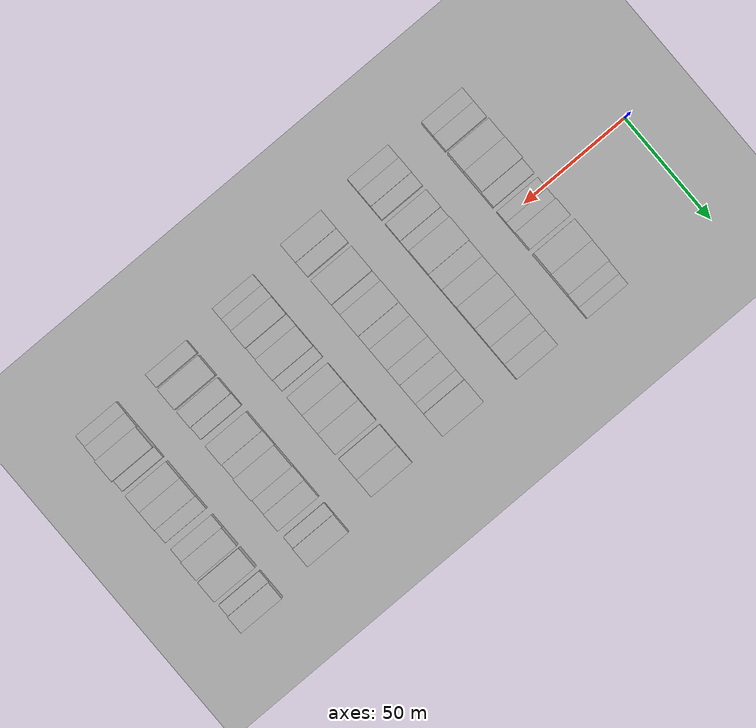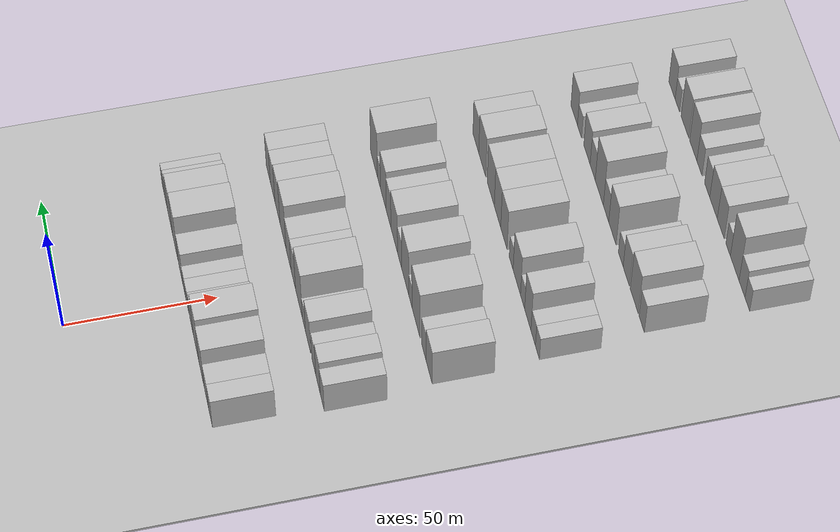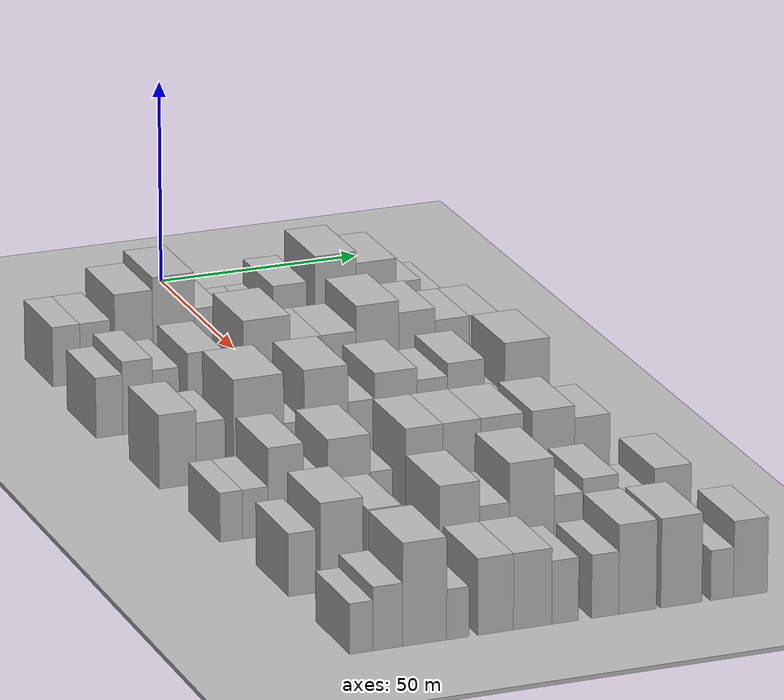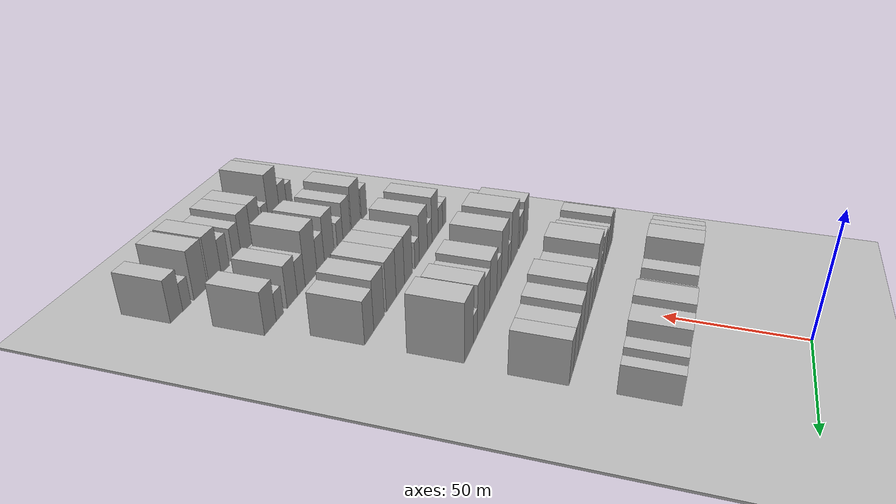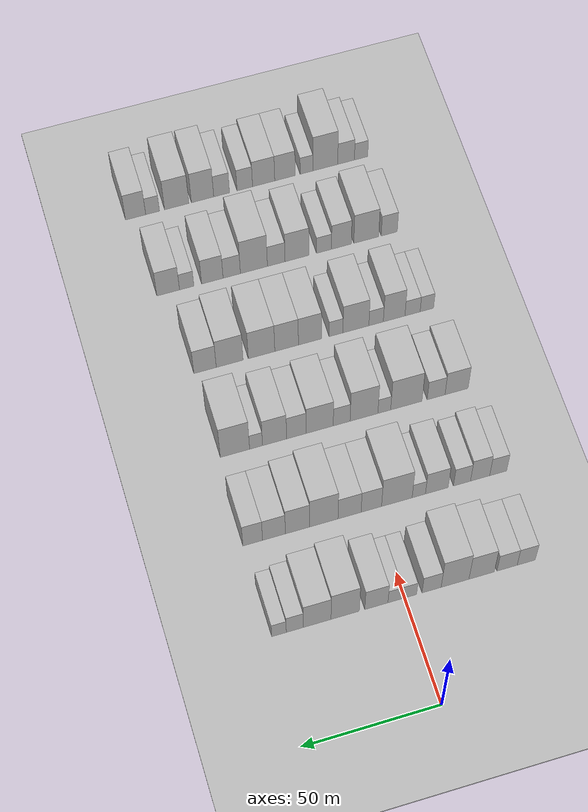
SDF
<sdf version="1.6">
 <world name="default">
  <include><name>ground_plane_1</name><uri>model://HANNAS_ground_plane</uri></include>
  <include>
   <name>ground_plane_2</name>
   <uri>model://HANNAS_ground_plane</uri>
   <pose>100 0 0  0 0 0</pose>
  </include>
  <model name="building_61">
   <static>1</static>
   <pose>50.0000 -44.6472 0 0.000000 0.000000 0.000000</pose>
   <link name="link">
    <pose>0 0 7.50 0 0 0</pose>
    <collision name="collision"><geometry><box><size>20.0000 6.7155 15.0000</size></box></geometry></collision>
    <visual name="visual">
     <cast_shadows>0</cast_shadows>
     <geometry><box><size>20.0000 6.7155 15.0000</size></box></geometry>
     <material>
      <script>
       <uri>model://HANNAS_wall/materials/scripts</uri>
       <uri>model://HANNAS_wall/materials/textures</uri>
       <name>vrc/HANNAS_wall</name>
      </script>
     </material>
    </visual>
   </link>
  </model>
  <model name="building_62">
   <static>1</static>
   <pose>50.0000 -37.5410 0 0.000000 0.000000 0.000000</pose>
   <link name="link">
    <pose>0 0 7.50 0 0 0</pose>
    <collision name="collision"><geometry><box><size>20.0000 7.4971 15.0000</size></box></geometry></collision>
    <visual name="visual">
     <cast_shadows>0</cast_shadows>
     <geometry><box><size>20.0000 7.4971 15.0000</size></box></geometry>
     <material>
      <script>
       <uri>model://HANNAS_wall/materials/scripts</uri>
       <uri>model://HANNAS_wall/materials/textures</uri>
       <name>vrc/HANNAS_wall</name>
      </script>
     </material>
    </visual>
   </link>
  </model>
  <model name="building_63">
   <static>1</static>
   <pose>50.0000 -28.1250 0 0.000000 0.000000 0.000000</pose>
   <link name="link">
    <pose>0 0 10.50 0 0 0</pose>
    <collision name="collision"><geometry><box><size>20.0000 9.3347 21.0000</size></box></geometry></collision>
    <visual name="visual">
     <cast_shadows>0</cast_shadows>
     <geometry><box><size>20.0000 9.3347 21.0000</size></box></geometry>
     <material>
      <script>
       <uri>model://HANNAS_wall/materials/scripts</uri>
       <uri>model://HANNAS_wall/materials/textures</uri>
       <name>vrc/HANNAS_wall</name>
      </script>
     </material>
    </visual>
   </link>
  </model>
  <model name="building_64">
   <static>1</static>
   <pose>50.0000 -18.3331 0 0.000000 0.000000 0.000000</pose>
   <link name="link">
    <pose>0 0 12.00 0 0 0</pose>
    <collision name="collision"><geometry><box><size>20.0000 10.2492 24.0000</size></box></geometry></collision>
    <visual name="visual">
     <cast_shadows>0</cast_shadows>
     <geometry><box><size>20.0000 10.2492 24.0000</size></box></geometry>
     <material>
      <script>
       <uri>model://HANNAS_wall/materials/scripts</uri>
       <uri>model://HANNAS_wall/materials/textures</uri>
       <name>vrc/HANNAS_wall</name>
      </script>
     </material>
    </visual>
   </link>
  </model>
  <model name="building_65">
   <static>1</static>
   <pose>50.0000 -9.7087 0 0.000000 0.000000 0.000000</pose>
   <link name="link">
    <pose>0 0 7.50 0 0 0</pose>
    <collision name="collision"><geometry><box><size>20.0000 6.9996 15.0000</size></box></geometry></collision>
    <visual name="visual">
     <cast_shadows>0</cast_shadows>
     <geometry><box><size>20.0000 6.9996 15.0000</size></box></geometry>
     <material>
      <script>
       <uri>model://HANNAS_wall/materials/scripts</uri>
       <uri>model://HANNAS_wall/materials/textures</uri>
       <name>vrc/HANNAS_wall</name>
      </script>
     </material>
    </visual>
   </link>
  </model>
  <model name="building_66">
   <static>1</static>
   <pose>50.0000 -1.4782 0 0.000000 0.000000 0.000000</pose>
   <link name="link">
    <pose>0 0 6.00 0 0 0</pose>
    <collision name="collision"><geometry><box><size>20.0000 5.4613 12.0000</size></box></geometry></collision>
    <visual name="visual">
     <cast_shadows>0</cast_shadows>
     <geometry><box><size>20.0000 5.4613 12.0000</size></box></geometry>
     <material>
      <script>
       <uri>model://HANNAS_wall/materials/scripts</uri>
       <uri>model://HANNAS_wall/materials/textures</uri>
       <name>vrc/HANNAS_wall</name>
      </script>
     </material>
    </visual>
   </link>
  </model>
  <model name="building_67">
   <static>1</static>
   <pose>50.0000 3.7592 0 0.000000 0.000000 0.000000</pose>
   <link name="link">
    <pose>0 0 6.00 0 0 0</pose>
    <collision name="collision"><geometry><box><size>20.0000 5.0137 12.0000</size></box></geometry></collision>
    <visual name="visual">
     <cast_shadows>0</cast_shadows>
     <geometry><box><size>20.0000 5.0137 12.0000</size></box></geometry>
     <material>
      <script>
       <uri>model://HANNAS_wall/materials/scripts</uri>
       <uri>model://HANNAS_wall/materials/textures</uri>
       <name>vrc/HANNAS_wall</name>
      </script>
     </material>
    </visual>
   </link>
  </model>
  <model name="building_68">
   <static>1</static>
   <pose>50.0000 10.4776 0 0.000000 0.000000 0.000000</pose>
   <link name="link">
    <pose>0 0 9.00 0 0 0</pose>
    <collision name="collision"><geometry><box><size>20.0000 8.4231 18.0000</size></box></geometry></collision>
    <visual name="visual">
     <cast_shadows>0</cast_shadows>
     <geometry><box><size>20.0000 8.4231 18.0000</size></box></geometry>
     <material>
      <script>
       <uri>model://HANNAS_wall/materials/scripts</uri>
       <uri>model://HANNAS_wall/materials/textures</uri>
       <name>vrc/HANNAS_wall</name>
      </script>
     </material>
    </visual>
   </link>
  </model>
  <model name="building_69">
   <static>1</static>
   <pose>50.0000 21.8212 0 0.000000 0.000000 0.000000</pose>
   <link name="link">
    <pose>0 0 12.00 0 0 0</pose>
    <collision name="collision"><geometry><box><size>20.0000 10.2640 24.0000</size></box></geometry></collision>
    <visual name="visual">
     <cast_shadows>0</cast_shadows>
     <geometry><box><size>20.0000 10.2640 24.0000</size></box></geometry>
     <material>
      <script>
       <uri>model://HANNAS_wall/materials/scripts</uri>
       <uri>model://HANNAS_wall/materials/textures</uri>
       <name>vrc/HANNAS_wall</name>
      </script>
     </material>
    </visual>
   </link>
  </model>
  <model name="building_70">
   <static>1</static>
   <pose>50.0000 31.9424 0 0.000000 0.000000 0.000000</pose>
   <link name="link">
    <pose>0 0 10.50 0 0 0</pose>
    <collision name="collision"><geometry><box><size>20.0000 9.9784 21.0000</size></box></geometry></collision>
    <visual name="visual">
     <cast_shadows>0</cast_shadows>
     <geometry><box><size>20.0000 9.9784 21.0000</size></box></geometry>
     <material>
      <script>
       <uri>model://HANNAS_wall/materials/scripts</uri>
       <uri>model://HANNAS_wall/materials/textures</uri>
       <name>vrc/HANNAS_wall</name>
      </script>
     </material>
    </visual>
   </link>
  </model>
  <model name="building_71">
   <static>1</static>
   <pose>50.0000 40.0186 0 0.000000 0.000000 0.000000</pose>
   <link name="link">
    <pose>0 0 7.50 0 0 0</pose>
    <collision name="collision"><geometry><box><size>20.0000 6.1740 15.0000</size></box></geometry></collision>
    <visual name="visual">
     <cast_shadows>0</cast_shadows>
     <geometry><box><size>20.0000 6.1740 15.0000</size></box></geometry>
     <material>
      <script>
       <uri>model://HANNAS_wall/materials/scripts</uri>
       <uri>model://HANNAS_wall/materials/textures</uri>
       <name>vrc/HANNAS_wall</name>
      </script>
     </material>
    </visual>
   </link>
  </model>
  <model name="building_72">
   <static>1</static>
   <pose>50.0000 45.7235 0 0.000000 0.000000 0.000000</pose>
   <link name="link">
    <pose>0 0 6.00 0 0 0</pose>
    <collision name="collision"><geometry><box><size>20.0000 5.2359 12.0000</size></box></geometry></collision>
    <visual name="visual">
     <cast_shadows>0</cast_shadows>
     <geometry><box><size>20.0000 5.2359 12.0000</size></box></geometry>
     <material>
      <script>
       <uri>model://HANNAS_wall/materials/scripts</uri>
       <uri>model://HANNAS_wall/materials/textures</uri>
       <name>vrc/HANNAS_wall</name>
      </script>
     </material>
    </visual>
   </link>
  </model>
  <model name="building_190">
   <static>1</static>
   <pose>85.0000 -46.4459 0 0.000000 0.000000 0.000000</pose>
   <link name="link">
    <pose>0 0 7.50 0 0 0</pose>
    <collision name="collision"><geometry><box><size>20.0000 6.4234 15.0000</size></box></geometry></collision>
    <visual name="visual">
     <cast_shadows>0</cast_shadows>
     <geometry><box><size>20.0000 6.4234 15.0000</size></box></geometry>
     <material>
      <script>
       <uri>model://HANNAS_wall/materials/scripts</uri>
       <uri>model://HANNAS_wall/materials/textures</uri>
       <name>vrc/HANNAS_wall</name>
      </script>
     </material>
    </visual>
   </link>
  </model>
  <model name="building_191">
   <static>1</static>
   <pose>85.0000 -39.6220 0 0.000000 0.000000 0.000000</pose>
   <link name="link">
    <pose>0 0 9.00 0 0 0</pose>
    <collision name="collision"><geometry><box><size>20.0000 7.2243 18.0000</size></box></geometry></collision>
    <visual name="visual">
     <cast_shadows>0</cast_shadows>
     <geometry><box><size>20.0000 7.2243 18.0000</size></box></geometry>
     <material>
      <script>
       <uri>model://HANNAS_wall/materials/scripts</uri>
       <uri>model://HANNAS_wall/materials/textures</uri>
       <name>vrc/HANNAS_wall</name>
      </script>
     </material>
    </visual>
   </link>
  </model>
  <model name="building_192">
   <static>1</static>
   <pose>85.0000 -32.7934 0 0.000000 0.000000 0.000000</pose>
   <link name="link">
    <pose>0 0 7.50 0 0 0</pose>
    <collision name="collision"><geometry><box><size>20.0000 6.4330 15.0000</size></box></geometry></collision>
    <visual name="visual">
     <cast_shadows>0</cast_shadows>
     <geometry><box><size>20.0000 6.4330 15.0000</size></box></geometry>
     <material>
      <script>
       <uri>model://HANNAS_wall/materials/scripts</uri>
       <uri>model://HANNAS_wall/materials/textures</uri>
       <name>vrc/HANNAS_wall</name>
      </script>
     </material>
    </visual>
   </link>
  </model>
  <model name="building_193">
   <static>1</static>
   <pose>85.0000 -23.3150 0 0.000000 0.000000 0.000000</pose>
   <link name="link">
    <pose>0 0 9.00 0 0 0</pose>
    <collision name="collision"><geometry><box><size>20.0000 8.5238 18.0000</size></box></geometry></collision>
    <visual name="visual">
     <cast_shadows>0</cast_shadows>
     <geometry><box><size>20.0000 8.5238 18.0000</size></box></geometry>
     <material>
      <script>
       <uri>model://HANNAS_wall/materials/scripts</uri>
       <uri>model://HANNAS_wall/materials/textures</uri>
       <name>vrc/HANNAS_wall</name>
      </script>
     </material>
    </visual>
   </link>
  </model>
  <model name="building_194">
   <static>1</static>
   <pose>85.0000 -16.5609 0 0.000000 0.000000 0.000000</pose>
   <link name="link">
    <pose>0 0 6.00 0 0 0</pose>
    <collision name="collision"><geometry><box><size>20.0000 4.9844 12.0000</size></box></geometry></collision>
    <visual name="visual">
     <cast_shadows>0</cast_shadows>
     <geometry><box><size>20.0000 4.9844 12.0000</size></box></geometry>
     <material>
      <script>
       <uri>model://HANNAS_wall/materials/scripts</uri>
       <uri>model://HANNAS_wall/materials/textures</uri>
       <name>vrc/HANNAS_wall</name>
      </script>
     </material>
    </visual>
   </link>
  </model>
  <model name="building_195">
   <static>1</static>
   <pose>85.0000 -8.3574 0 0.000000 0.000000 0.000000</pose>
   <link name="link">
    <pose>0 0 12.00 0 0 0</pose>
    <collision name="collision"><geometry><box><size>20.0000 11.4226 24.0000</size></box></geometry></collision>
    <visual name="visual">
     <cast_shadows>0</cast_shadows>
     <geometry><box><size>20.0000 11.4226 24.0000</size></box></geometry>
     <material>
      <script>
       <uri>model://HANNAS_wall/materials/scripts</uri>
       <uri>model://HANNAS_wall/materials/textures</uri>
       <name>vrc/HANNAS_wall</name>
      </script>
     </material>
    </visual>
   </link>
  </model>
  <model name="building_196">
   <static>1</static>
   <pose>85.0000 1.1625 0 0.000000 0.000000 0.000000</pose>
   <link name="link">
    <pose>0 0 9.00 0 0 0</pose>
    <collision name="collision"><geometry><box><size>20.0000 7.6171 18.0000</size></box></geometry></collision>
    <visual name="visual">
     <cast_shadows>0</cast_shadows>
     <geometry><box><size>20.0000 7.6171 18.0000</size></box></geometry>
     <material>
      <script>
       <uri>model://HANNAS_wall/materials/scripts</uri>
       <uri>model://HANNAS_wall/materials/textures</uri>
       <name>vrc/HANNAS_wall</name>
      </script>
     </material>
    </visual>
   </link>
  </model>
  <model name="building_197">
   <static>1</static>
   <pose>85.0000 9.2488 0 0.000000 0.000000 0.000000</pose>
   <link name="link">
    <pose>0 0 9.00 0 0 0</pose>
    <collision name="collision"><geometry><box><size>20.0000 8.5557 18.0000</size></box></geometry></collision>
    <visual name="visual">
     <cast_shadows>0</cast_shadows>
     <geometry><box><size>20.0000 8.5557 18.0000</size></box></geometry>
     <material>
      <script>
       <uri>model://HANNAS_wall/materials/scripts</uri>
       <uri>model://HANNAS_wall/materials/textures</uri>
       <name>vrc/HANNAS_wall</name>
      </script>
     </material>
    </visual>
   </link>
  </model>
  <model name="building_198">
   <static>1</static>
   <pose>85.0000 18.7583 0 0.000000 0.000000 0.000000</pose>
   <link name="link">
    <pose>0 0 12.00 0 0 0</pose>
    <collision name="collision"><geometry><box><size>20.0000 10.4633 24.0000</size></box></geometry></collision>
    <visual name="visual">
     <cast_shadows>0</cast_shadows>
     <geometry><box><size>20.0000 10.4633 24.0000</size></box></geometry>
     <material>
      <script>
       <uri>model://HANNAS_wall/materials/scripts</uri>
       <uri>model://HANNAS_wall/materials/textures</uri>
       <name>vrc/HANNAS_wall</name>
      </script>
     </material>
    </visual>
   </link>
  </model>
  <model name="building_199">
   <static>1</static>
   <pose>85.0000 28.4681 0 0.000000 0.000000 0.000000</pose>
   <link name="link">
    <pose>0 0 10.50 0 0 0</pose>
    <collision name="collision"><geometry><box><size>20.0000 8.9564 21.0000</size></box></geometry></collision>
    <visual name="visual">
     <cast_shadows>0</cast_shadows>
     <geometry><box><size>20.0000 8.9564 21.0000</size></box></geometry>
     <material>
      <script>
       <uri>model://HANNAS_wall/materials/scripts</uri>
       <uri>model://HANNAS_wall/materials/textures</uri>
       <name>vrc/HANNAS_wall</name>
      </script>
     </material>
    </visual>
   </link>
  </model>
  <model name="building_200">
   <static>1</static>
   <pose>85.0000 37.1451 0 0.000000 0.000000 0.000000</pose>
   <link name="link">
    <pose>0 0 9.00 0 0 0</pose>
    <collision name="collision"><geometry><box><size>20.0000 8.3976 18.0000</size></box></geometry></collision>
    <visual name="visual">
     <cast_shadows>0</cast_shadows>
     <geometry><box><size>20.0000 8.3976 18.0000</size></box></geometry>
     <material>
      <script>
       <uri>model://HANNAS_wall/materials/scripts</uri>
       <uri>model://HANNAS_wall/materials/textures</uri>
       <name>vrc/HANNAS_wall</name>
      </script>
     </material>
    </visual>
   </link>
  </model>
  <model name="building_201">
   <static>1</static>
   <pose>85.0000 44.9519 0 0.000000 0.000000 0.000000</pose>
   <link name="link">
    <pose>0 0 9.00 0 0 0</pose>
    <collision name="collision"><geometry><box><size>20.0000 7.2159 18.0000</size></box></geometry></collision>
    <visual name="visual">
     <cast_shadows>0</cast_shadows>
     <geometry><box><size>20.0000 7.2159 18.0000</size></box></geometry>
     <material>
      <script>
       <uri>model://HANNAS_wall/materials/scripts</uri>
       <uri>model://HANNAS_wall/materials/textures</uri>
       <name>vrc/HANNAS_wall</name>
      </script>
     </material>
    </visual>
   </link>
  </model>
  <model name="building_313">
   <static>1</static>
   <pose>120.0000 -42.5972 0 0.000000 0.000000 0.000000</pose>
   <link name="link">
    <pose>0 0 9.00 0 0 0</pose>
    <collision name="collision"><geometry><box><size>20.0000 8.8625 18.0000</size></box></geometry></collision>
    <visual name="visual">
     <cast_shadows>0</cast_shadows>
     <geometry><box><size>20.0000 8.8625 18.0000</size></box></geometry>
     <material>
      <script>
       <uri>model://HANNAS_wall/materials/scripts</uri>
       <uri>model://HANNAS_wall/materials/textures</uri>
       <name>vrc/HANNAS_wall</name>
      </script>
     </material>
    </visual>
   </link>
  </model>
  <model name="building_314">
   <static>1</static>
   <pose>120.0000 -34.7404 0 0.000000 0.000000 0.000000</pose>
   <link name="link">
    <pose>0 0 7.50 0 0 0</pose>
    <collision name="collision"><geometry><box><size>20.0000 6.8511 15.0000</size></box></geometry></collision>
    <visual name="visual">
     <cast_shadows>0</cast_shadows>
     <geometry><box><size>20.0000 6.8511 15.0000</size></box></geometry>
     <material>
      <script>
       <uri>model://HANNAS_wall/materials/scripts</uri>
       <uri>model://HANNAS_wall/materials/textures</uri>
       <name>vrc/HANNAS_wall</name>
      </script>
     </material>
    </visual>
   </link>
  </model>
  <model name="building_315">
   <static>1</static>
   <pose>120.0000 -23.3367 0 0.000000 0.000000 0.000000</pose>
   <link name="link">
    <pose>0 0 12.00 0 0 0</pose>
    <collision name="collision"><geometry><box><size>20.0000 11.9563 24.0000</size></box></geometry></collision>
    <visual name="visual">
     <cast_shadows>0</cast_shadows>
     <geometry><box><size>20.0000 11.9563 24.0000</size></box></geometry>
     <material>
      <script>
       <uri>model://HANNAS_wall/materials/scripts</uri>
       <uri>model://HANNAS_wall/materials/textures</uri>
       <name>vrc/HANNAS_wall</name>
      </script>
     </material>
    </visual>
   </link>
  </model>
  <model name="building_316">
   <static>1</static>
   <pose>120.0000 -14.9252 0 0.000000 0.000000 0.000000</pose>
   <link name="link">
    <pose>0 0 6.00 0 0 0</pose>
    <collision name="collision"><geometry><box><size>20.0000 4.8667 12.0000</size></box></geometry></collision>
    <visual name="visual">
     <cast_shadows>0</cast_shadows>
     <geometry><box><size>20.0000 4.8667 12.0000</size></box></geometry>
     <material>
      <script>
       <uri>model://HANNAS_wall/materials/scripts</uri>
       <uri>model://HANNAS_wall/materials/textures</uri>
       <name>vrc/HANNAS_wall</name>
      </script>
     </material>
    </visual>
   </link>
  </model>
  <model name="building_317">
   <static>1</static>
   <pose>120.0000 -7.2116 0 0.000000 0.000000 0.000000</pose>
   <link name="link">
    <pose>0 0 12.00 0 0 0</pose>
    <collision name="collision"><geometry><box><size>20.0000 10.5604 24.0000</size></box></geometry></collision>
    <visual name="visual">
     <cast_shadows>0</cast_shadows>
     <geometry><box><size>20.0000 10.5604 24.0000</size></box></geometry>
     <material>
      <script>
       <uri>model://HANNAS_wall/materials/scripts</uri>
       <uri>model://HANNAS_wall/materials/textures</uri>
       <name>vrc/HANNAS_wall</name>
      </script>
     </material>
    </visual>
   </link>
  </model>
  <model name="building_318">
   <static>1</static>
   <pose>120.0000 1.2602 0 0.000000 0.000000 0.000000</pose>
   <link name="link">
    <pose>0 0 7.50 0 0 0</pose>
    <collision name="collision"><geometry><box><size>20.0000 6.3833 15.0000</size></box></geometry></collision>
    <visual name="visual">
     <cast_shadows>0</cast_shadows>
     <geometry><box><size>20.0000 6.3833 15.0000</size></box></geometry>
     <material>
      <script>
       <uri>model://HANNAS_wall/materials/scripts</uri>
       <uri>model://HANNAS_wall/materials/textures</uri>
       <name>vrc/HANNAS_wall</name>
      </script>
     </material>
    </visual>
   </link>
  </model>
  <model name="building_319">
   <static>1</static>
   <pose>120.0000 9.5527 0 0.000000 0.000000 0.000000</pose>
   <link name="link">
    <pose>0 0 10.50 0 0 0</pose>
    <collision name="collision"><geometry><box><size>20.0000 10.2016 21.0000</size></box></geometry></collision>
    <visual name="visual">
     <cast_shadows>0</cast_shadows>
     <geometry><box><size>20.0000 10.2016 21.0000</size></box></geometry>
     <material>
      <script>
       <uri>model://HANNAS_wall/materials/scripts</uri>
       <uri>model://HANNAS_wall/materials/textures</uri>
       <name>vrc/HANNAS_wall</name>
      </script>
     </material>
    </visual>
   </link>
  </model>
  <model name="building_320">
   <static>1</static>
   <pose>120.0000 18.3383 0 0.000000 0.000000 0.000000</pose>
   <link name="link">
    <pose>0 0 9.00 0 0 0</pose>
    <collision name="collision"><geometry><box><size>20.0000 7.3697 18.0000</size></box></geometry></collision>
    <visual name="visual">
     <cast_shadows>0</cast_shadows>
     <geometry><box><size>20.0000 7.3697 18.0000</size></box></geometry>
     <material>
      <script>
       <uri>model://HANNAS_wall/materials/scripts</uri>
       <uri>model://HANNAS_wall/materials/textures</uri>
       <name>vrc/HANNAS_wall</name>
      </script>
     </material>
    </visual>
   </link>
  </model>
  <model name="building_321">
   <static>1</static>
   <pose>120.0000 26.5480 0 0.000000 0.000000 0.000000</pose>
   <link name="link">
    <pose>0 0 10.50 0 0 0</pose>
    <collision name="collision"><geometry><box><size>20.0000 9.0497 21.0000</size></box></geometry></collision>
    <visual name="visual">
     <cast_shadows>0</cast_shadows>
     <geometry><box><size>20.0000 9.0497 21.0000</size></box></geometry>
     <material>
      <script>
       <uri>model://HANNAS_wall/materials/scripts</uri>
       <uri>model://HANNAS_wall/materials/textures</uri>
       <name>vrc/HANNAS_wall</name>
      </script>
     </material>
    </visual>
   </link>
  </model>
  <model name="building_322">
   <static>1</static>
   <pose>120.0000 33.5007 0 0.000000 0.000000 0.000000</pose>
   <link name="link">
    <pose>0 0 6.00 0 0 0</pose>
    <collision name="collision"><geometry><box><size>20.0000 4.8557 12.0000</size></box></geometry></collision>
    <visual name="visual">
     <cast_shadows>0</cast_shadows>
     <geometry><box><size>20.0000 4.8557 12.0000</size></box></geometry>
     <material>
      <script>
       <uri>model://HANNAS_wall/materials/scripts</uri>
       <uri>model://HANNAS_wall/materials/textures</uri>
       <name>vrc/HANNAS_wall</name>
      </script>
     </material>
    </visual>
   </link>
  </model>
  <model name="building_323">
   <static>1</static>
   <pose>120.0000 41.4045 0 0.000000 0.000000 0.000000</pose>
   <link name="link">
    <pose>0 0 12.00 0 0 0</pose>
    <collision name="collision"><geometry><box><size>20.0000 10.9520 24.0000</size></box></geometry></collision>
    <visual name="visual">
     <cast_shadows>0</cast_shadows>
     <geometry><box><size>20.0000 10.9520 24.0000</size></box></geometry>
     <material>
      <script>
       <uri>model://HANNAS_wall/materials/scripts</uri>
       <uri>model://HANNAS_wall/materials/textures</uri>
       <name>vrc/HANNAS_wall</name>
      </script>
     </material>
    </visual>
   </link>
  </model>
  <model name="building_435">
   <static>1</static>
   <pose>155.0000 -42.7965 0 0.000000 0.000000 0.000000</pose>
   <link name="link">
    <pose>0 0 6.00 0 0 0</pose>
    <collision name="collision"><geometry><box><size>20.0000 5.2604 12.0000</size></box></geometry></collision>
    <visual name="visual">
     <cast_shadows>0</cast_shadows>
     <geometry><box><size>20.0000 5.2604 12.0000</size></box></geometry>
     <material>
      <script>
       <uri>model://HANNAS_wall/materials/scripts</uri>
       <uri>model://HANNAS_wall/materials/textures</uri>
       <name>vrc/HANNAS_wall</name>
      </script>
     </material>
    </visual>
   </link>
  </model>
  <model name="building_436">
   <static>1</static>
   <pose>155.0000 -37.1959 0 0.000000 0.000000 0.000000</pose>
   <link name="link">
    <pose>0 0 6.00 0 0 0</pose>
    <collision name="collision"><geometry><box><size>20.0000 5.9408 12.0000</size></box></geometry></collision>
    <visual name="visual">
     <cast_shadows>0</cast_shadows>
     <geometry><box><size>20.0000 5.9408 12.0000</size></box></geometry>
     <material>
      <script>
       <uri>model://HANNAS_wall/materials/scripts</uri>
       <uri>model://HANNAS_wall/materials/textures</uri>
       <name>vrc/HANNAS_wall</name>
      </script>
     </material>
    </visual>
   </link>
  </model>
  <model name="building_437">
   <static>1</static>
   <pose>155.0000 -30.0200 0 0.000000 0.000000 0.000000</pose>
   <link name="link">
    <pose>0 0 10.50 0 0 0</pose>
    <collision name="collision"><geometry><box><size>20.0000 8.4110 21.0000</size></box></geometry></collision>
    <visual name="visual">
     <cast_shadows>0</cast_shadows>
     <geometry><box><size>20.0000 8.4110 21.0000</size></box></geometry>
     <material>
      <script>
       <uri>model://HANNAS_wall/materials/scripts</uri>
       <uri>model://HANNAS_wall/materials/textures</uri>
       <name>vrc/HANNAS_wall</name>
      </script>
     </material>
    </visual>
   </link>
  </model>
  <model name="building_438">
   <static>1</static>
   <pose>155.0000 -23.0058 0 0.000000 0.000000 0.000000</pose>
   <link name="link">
    <pose>0 0 6.00 0 0 0</pose>
    <collision name="collision"><geometry><box><size>20.0000 5.6173 12.0000</size></box></geometry></collision>
    <visual name="visual">
     <cast_shadows>0</cast_shadows>
     <geometry><box><size>20.0000 5.6173 12.0000</size></box></geometry>
     <material>
      <script>
       <uri>model://HANNAS_wall/materials/scripts</uri>
       <uri>model://HANNAS_wall/materials/textures</uri>
       <name>vrc/HANNAS_wall</name>
      </script>
     </material>
    </visual>
   </link>
  </model>
  <model name="building_439">
   <static>1</static>
   <pose>155.0000 -15.1547 0 0.000000 0.000000 0.000000</pose>
   <link name="link">
    <pose>0 0 10.50 0 0 0</pose>
    <collision name="collision"><geometry><box><size>20.0000 10.0847 21.0000</size></box></geometry></collision>
    <visual name="visual">
     <cast_shadows>0</cast_shadows>
     <geometry><box><size>20.0000 10.0847 21.0000</size></box></geometry>
     <material>
      <script>
       <uri>model://HANNAS_wall/materials/scripts</uri>
       <uri>model://HANNAS_wall/materials/textures</uri>
       <name>vrc/HANNAS_wall</name>
      </script>
     </material>
    </visual>
   </link>
  </model>
  <model name="building_440">
   <static>1</static>
   <pose>155.0000 -7.4631 0 0.000000 0.000000 0.000000</pose>
   <link name="link">
    <pose>0 0 6.00 0 0 0</pose>
    <collision name="collision"><geometry><box><size>20.0000 5.2986 12.0000</size></box></geometry></collision>
    <visual name="visual">
     <cast_shadows>0</cast_shadows>
     <geometry><box><size>20.0000 5.2986 12.0000</size></box></geometry>
     <material>
      <script>
       <uri>model://HANNAS_wall/materials/scripts</uri>
       <uri>model://HANNAS_wall/materials/textures</uri>
       <name>vrc/HANNAS_wall</name>
      </script>
     </material>
    </visual>
   </link>
  </model>
  <model name="building_441">
   <static>1</static>
   <pose>155.0000 2.6052 0 0.000000 0.000000 0.000000</pose>
   <link name="link">
    <pose>0 0 10.50 0 0 0</pose>
    <collision name="collision"><geometry><box><size>20.0000 8.8379 21.0000</size></box></geometry></collision>
    <visual name="visual">
     <cast_shadows>0</cast_shadows>
     <geometry><box><size>20.0000 8.8379 21.0000</size></box></geometry>
     <material>
      <script>
       <uri>model://HANNAS_wall/materials/scripts</uri>
       <uri>model://HANNAS_wall/materials/textures</uri>
       <name>vrc/HANNAS_wall</name>
      </script>
     </material>
    </visual>
   </link>
  </model>
  <model name="building_442">
   <static>1</static>
   <pose>155.0000 11.5590 0 0.000000 0.000000 0.000000</pose>
   <link name="link">
    <pose>0 0 10.50 0 0 0</pose>
    <collision name="collision"><geometry><box><size>20.0000 9.0697 21.0000</size></box></geometry></collision>
    <visual name="visual">
     <cast_shadows>0</cast_shadows>
     <geometry><box><size>20.0000 9.0697 21.0000</size></box></geometry>
     <material>
      <script>
       <uri>model://HANNAS_wall/materials/scripts</uri>
       <uri>model://HANNAS_wall/materials/textures</uri>
       <name>vrc/HANNAS_wall</name>
      </script>
     </material>
    </visual>
   </link>
  </model>
  <model name="building_443">
   <static>1</static>
   <pose>155.0000 21.1714 0 0.000000 0.000000 0.000000</pose>
   <link name="link">
    <pose>0 0 10.50 0 0 0</pose>
    <collision name="collision"><geometry><box><size>20.0000 10.1550 21.0000</size></box></geometry></collision>
    <visual name="visual">
     <cast_shadows>0</cast_shadows>
     <geometry><box><size>20.0000 10.1550 21.0000</size></box></geometry>
     <material>
      <script>
       <uri>model://HANNAS_wall/materials/scripts</uri>
       <uri>model://HANNAS_wall/materials/textures</uri>
       <name>vrc/HANNAS_wall</name>
      </script>
     </material>
    </visual>
   </link>
  </model>
  <model name="building_444">
   <static>1</static>
   <pose>155.0000 33.3580 0 0.000000 0.000000 0.000000</pose>
   <link name="link">
    <pose>0 0 10.50 0 0 0</pose>
    <collision name="collision"><geometry><box><size>20.0000 10.2183 21.0000</size></box></geometry></collision>
    <visual name="visual">
     <cast_shadows>0</cast_shadows>
     <geometry><box><size>20.0000 10.2183 21.0000</size></box></geometry>
     <material>
      <script>
       <uri>model://HANNAS_wall/materials/scripts</uri>
       <uri>model://HANNAS_wall/materials/textures</uri>
       <name>vrc/HANNAS_wall</name>
      </script>
     </material>
    </visual>
   </link>
  </model>
  <model name="building_445">
   <static>1</static>
   <pose>155.0000 42.7305 0 0.000000 0.000000 0.000000</pose>
   <link name="link">
    <pose>0 0 9.00 0 0 0</pose>
    <collision name="collision"><geometry><box><size>20.0000 8.5268 18.0000</size></box></geometry></collision>
    <visual name="visual">
     <cast_shadows>0</cast_shadows>
     <geometry><box><size>20.0000 8.5268 18.0000</size></box></geometry>
     <material>
      <script>
       <uri>model://HANNAS_wall/materials/scripts</uri>
       <uri>model://HANNAS_wall/materials/textures</uri>
       <name>vrc/HANNAS_wall</name>
      </script>
     </material>
    </visual>
   </link>
  </model>
  <model name="building_566">
   <static>1</static>
   <pose>190.0000 -39.4015 0 0.000000 0.000000 0.000000</pose>
   <link name="link">
    <pose>0 0 7.50 0 0 0</pose>
    <collision name="collision"><geometry><box><size>20.0000 6.3642 15.0000</size></box></geometry></collision>
    <visual name="visual">
     <cast_shadows>0</cast_shadows>
     <geometry><box><size>20.0000 6.3642 15.0000</size></box></geometry>
     <material>
      <script>
       <uri>model://HANNAS_wall/materials/scripts</uri>
       <uri>model://HANNAS_wall/materials/textures</uri>
       <name>vrc/HANNAS_wall</name>
      </script>
     </material>
    </visual>
   </link>
  </model>
  <model name="building_567">
   <static>1</static>
   <pose>190.0000 -30.2973 0 0.000000 0.000000 0.000000</pose>
   <link name="link">
    <pose>0 0 10.50 0 0 0</pose>
    <collision name="collision"><geometry><box><size>20.0000 9.8441 21.0000</size></box></geometry></collision>
    <visual name="visual">
     <cast_shadows>0</cast_shadows>
     <geometry><box><size>20.0000 9.8441 21.0000</size></box></geometry>
     <material>
      <script>
       <uri>model://HANNAS_wall/materials/scripts</uri>
       <uri>model://HANNAS_wall/materials/textures</uri>
       <name>vrc/HANNAS_wall</name>
      </script>
     </material>
    </visual>
   </link>
  </model>
  <model name="building_568">
   <static>1</static>
   <pose>190.0000 -20.4563 0 0.000000 0.000000 0.000000</pose>
   <link name="link">
    <pose>0 0 9.00 0 0 0</pose>
    <collision name="collision"><geometry><box><size>20.0000 7.8380 18.0000</size></box></geometry></collision>
    <visual name="visual">
     <cast_shadows>0</cast_shadows>
     <geometry><box><size>20.0000 7.8380 18.0000</size></box></geometry>
     <material>
      <script>
       <uri>model://HANNAS_wall/materials/scripts</uri>
       <uri>model://HANNAS_wall/materials/textures</uri>
       <name>vrc/HANNAS_wall</name>
      </script>
     </material>
    </visual>
   </link>
  </model>
  <model name="building_569">
   <static>1</static>
   <pose>190.0000 -13.5885 0 0.000000 0.000000 0.000000</pose>
   <link name="link">
    <pose>0 0 6.00 0 0 0</pose>
    <collision name="collision"><geometry><box><size>20.0000 5.8976 12.0000</size></box></geometry></collision>
    <visual name="visual">
     <cast_shadows>0</cast_shadows>
     <geometry><box><size>20.0000 5.8976 12.0000</size></box></geometry>
     <material>
      <script>
       <uri>model://HANNAS_wall/materials/scripts</uri>
       <uri>model://HANNAS_wall/materials/textures</uri>
       <name>vrc/HANNAS_wall</name>
      </script>
     </material>
    </visual>
   </link>
  </model>
  <model name="building_570">
   <static>1</static>
   <pose>190.0000 -2.9663 0 0.000000 0.000000 0.000000</pose>
   <link name="link">
    <pose>0 0 10.50 0 0 0</pose>
    <collision name="collision"><geometry><box><size>20.0000 9.3468 21.0000</size></box></geometry></collision>
    <visual name="visual">
     <cast_shadows>0</cast_shadows>
     <geometry><box><size>20.0000 9.3468 21.0000</size></box></geometry>
     <material>
      <script>
       <uri>model://HANNAS_wall/materials/scripts</uri>
       <uri>model://HANNAS_wall/materials/textures</uri>
       <name>vrc/HANNAS_wall</name>
      </script>
     </material>
    </visual>
   </link>
  </model>
  <model name="building_571">
   <static>1</static>
   <pose>190.0000 5.1607 0 0.000000 0.000000 0.000000</pose>
   <link name="link">
    <pose>0 0 7.50 0 0 0</pose>
    <collision name="collision"><geometry><box><size>20.0000 6.9074 15.0000</size></box></geometry></collision>
    <visual name="visual">
     <cast_shadows>0</cast_shadows>
     <geometry><box><size>20.0000 6.9074 15.0000</size></box></geometry>
     <material>
      <script>
       <uri>model://HANNAS_wall/materials/scripts</uri>
       <uri>model://HANNAS_wall/materials/textures</uri>
       <name>vrc/HANNAS_wall</name>
      </script>
     </material>
    </visual>
   </link>
  </model>
  <model name="building_572">
   <static>1</static>
   <pose>190.0000 13.8901 0 0.000000 0.000000 0.000000</pose>
   <link name="link">
    <pose>0 0 12.00 0 0 0</pose>
    <collision name="collision"><geometry><box><size>20.0000 10.5514 24.0000</size></box></geometry></collision>
    <visual name="visual">
     <cast_shadows>0</cast_shadows>
     <geometry><box><size>20.0000 10.5514 24.0000</size></box></geometry>
     <material>
      <script>
       <uri>model://HANNAS_wall/materials/scripts</uri>
       <uri>model://HANNAS_wall/materials/textures</uri>
       <name>vrc/HANNAS_wall</name>
      </script>
     </material>
    </visual>
   </link>
  </model>
  <model name="building_573">
   <static>1</static>
   <pose>190.0000 22.5325 0 0.000000 0.000000 0.000000</pose>
   <link name="link">
    <pose>0 0 7.50 0 0 0</pose>
    <collision name="collision"><geometry><box><size>20.0000 6.7333 15.0000</size></box></geometry></collision>
    <visual name="visual">
     <cast_shadows>0</cast_shadows>
     <geometry><box><size>20.0000 6.7333 15.0000</size></box></geometry>
     <material>
      <script>
       <uri>model://HANNAS_wall/materials/scripts</uri>
       <uri>model://HANNAS_wall/materials/textures</uri>
       <name>vrc/HANNAS_wall</name>
      </script>
     </material>
    </visual>
   </link>
  </model>
  <model name="building_574">
   <static>1</static>
   <pose>190.0000 30.0694 0 0.000000 0.000000 0.000000</pose>
   <link name="link">
    <pose>0 0 9.00 0 0 0</pose>
    <collision name="collision"><geometry><box><size>20.0000 8.3404 18.0000</size></box></geometry></collision>
    <visual name="visual">
     <cast_shadows>0</cast_shadows>
     <geometry><box><size>20.0000 8.3404 18.0000</size></box></geometry>
     <material>
      <script>
       <uri>model://HANNAS_wall/materials/scripts</uri>
       <uri>model://HANNAS_wall/materials/textures</uri>
       <name>vrc/HANNAS_wall</name>
      </script>
     </material>
    </visual>
   </link>
  </model>
  <model name="building_575">
   <static>1</static>
   <pose>190.0000 40.0247 0 0.000000 0.000000 0.000000</pose>
   <link name="link">
    <pose>0 0 6.00 0 0 0</pose>
    <collision name="collision"><geometry><box><size>20.0000 5.5701 12.0000</size></box></geometry></collision>
    <visual name="visual">
     <cast_shadows>0</cast_shadows>
     <geometry><box><size>20.0000 5.5701 12.0000</size></box></geometry>
     <material>
      <script>
       <uri>model://HANNAS_wall/materials/scripts</uri>
       <uri>model://HANNAS_wall/materials/textures</uri>
       <name>vrc/HANNAS_wall</name>
      </script>
     </material>
    </visual>
   </link>
  </model>
  <model name="building_576">
   <static>1</static>
   <pose>190.0000 47.1925 0 0.000000 0.000000 0.000000</pose>
   <link name="link">
    <pose>0 0 9.00 0 0 0</pose>
    <collision name="collision"><geometry><box><size>20.0000 8.7655 18.0000</size></box></geometry></collision>
    <visual name="visual">
     <cast_shadows>0</cast_shadows>
     <geometry><box><size>20.0000 8.7655 18.0000</size></box></geometry>
     <material>
      <script>
       <uri>model://HANNAS_wall/materials/scripts</uri>
       <uri>model://HANNAS_wall/materials/textures</uri>
       <name>vrc/HANNAS_wall</name>
      </script>
     </material>
    </visual>
   </link>
  </model>
  <model name="building_692">
   <static>1</static>
   <pose>225.0000 -39.3120 0 0.000000 0.000000 0.000000</pose>
   <link name="link">
    <pose>0 0 6.00 0 0 0</pose>
    <collision name="collision"><geometry><box><size>20.0000 5.3685 12.0000</size></box></geometry></collision>
    <visual name="visual">
     <cast_shadows>0</cast_shadows>
     <geometry><box><size>20.0000 5.3685 12.0000</size></box></geometry>
     <material>
      <script>
       <uri>model://HANNAS_wall/materials/scripts</uri>
       <uri>model://HANNAS_wall/materials/textures</uri>
       <name>vrc/HANNAS_wall</name>
      </script>
     </material>
    </visual>
   </link>
  </model>
  <model name="building_693">
   <static>1</static>
   <pose>225.0000 -33.2620 0 0.000000 0.000000 0.000000</pose>
   <link name="link">
    <pose>0 0 7.50 0 0 0</pose>
    <collision name="collision"><geometry><box><size>20.0000 6.7316 15.0000</size></box></geometry></collision>
    <visual name="visual">
     <cast_shadows>0</cast_shadows>
     <geometry><box><size>20.0000 6.7316 15.0000</size></box></geometry>
     <material>
      <script>
       <uri>model://HANNAS_wall/materials/scripts</uri>
       <uri>model://HANNAS_wall/materials/textures</uri>
       <name>vrc/HANNAS_wall</name>
      </script>
     </material>
    </visual>
   </link>
  </model>
  <model name="building_694">
   <static>1</static>
   <pose>225.0000 -24.9042 0 0.000000 0.000000 0.000000</pose>
   <link name="link">
    <pose>0 0 12.00 0 0 0</pose>
    <collision name="collision"><geometry><box><size>20.0000 9.9840 24.0000</size></box></geometry></collision>
    <visual name="visual">
     <cast_shadows>0</cast_shadows>
     <geometry><box><size>20.0000 9.9840 24.0000</size></box></geometry>
     <material>
      <script>
       <uri>model://HANNAS_wall/materials/scripts</uri>
       <uri>model://HANNAS_wall/materials/textures</uri>
       <name>vrc/HANNAS_wall</name>
      </script>
     </material>
    </visual>
   </link>
  </model>
  <model name="building_695">
   <static>1</static>
   <pose>225.0000 -17.3557 0 0.000000 0.000000 0.000000</pose>
   <link name="link">
    <pose>0 0 6.00 0 0 0</pose>
    <collision name="collision"><geometry><box><size>20.0000 5.1129 12.0000</size></box></geometry></collision>
    <visual name="visual">
     <cast_shadows>0</cast_shadows>
     <geometry><box><size>20.0000 5.1129 12.0000</size></box></geometry>
     <material>
      <script>
       <uri>model://HANNAS_wall/materials/scripts</uri>
       <uri>model://HANNAS_wall/materials/textures</uri>
       <name>vrc/HANNAS_wall</name>
      </script>
     </material>
    </visual>
   </link>
  </model>
  <model name="building_696">
   <static>1</static>
   <pose>225.0000 -8.7158 0 0.000000 0.000000 0.000000</pose>
   <link name="link">
    <pose>0 0 9.00 0 0 0</pose>
    <collision name="collision"><geometry><box><size>20.0000 8.1670 18.0000</size></box></geometry></collision>
    <visual name="visual">
     <cast_shadows>0</cast_shadows>
     <geometry><box><size>20.0000 8.1670 18.0000</size></box></geometry>
     <material>
      <script>
       <uri>model://HANNAS_wall/materials/scripts</uri>
       <uri>model://HANNAS_wall/materials/textures</uri>
       <name>vrc/HANNAS_wall</name>
      </script>
     </material>
    </visual>
   </link>
  </model>
  <model name="building_697">
   <static>1</static>
   <pose>225.0000 -0.2034 0 0.000000 0.000000 0.000000</pose>
   <link name="link">
    <pose>0 0 9.00 0 0 0</pose>
    <collision name="collision"><geometry><box><size>20.0000 8.8576 18.0000</size></box></geometry></collision>
    <visual name="visual">
     <cast_shadows>0</cast_shadows>
     <geometry><box><size>20.0000 8.8576 18.0000</size></box></geometry>
     <material>
      <script>
       <uri>model://HANNAS_wall/materials/scripts</uri>
       <uri>model://HANNAS_wall/materials/textures</uri>
       <name>vrc/HANNAS_wall</name>
      </script>
     </material>
    </visual>
   </link>
  </model>
  <model name="building_698">
   <static>1</static>
   <pose>225.0000 7.3144 0 0.000000 0.000000 0.000000</pose>
   <link name="link">
    <pose>0 0 7.50 0 0 0</pose>
    <collision name="collision"><geometry><box><size>20.0000 6.1781 15.0000</size></box></geometry></collision>
    <visual name="visual">
     <cast_shadows>0</cast_shadows>
     <geometry><box><size>20.0000 6.1781 15.0000</size></box></geometry>
     <material>
      <script>
       <uri>model://HANNAS_wall/materials/scripts</uri>
       <uri>model://HANNAS_wall/materials/textures</uri>
       <name>vrc/HANNAS_wall</name>
      </script>
     </material>
    </visual>
   </link>
  </model>
  <model name="building_699">
   <static>1</static>
   <pose>225.0000 16.5302 0 0.000000 0.000000 0.000000</pose>
   <link name="link">
    <pose>0 0 7.50 0 0 0</pose>
    <collision name="collision"><geometry><box><size>20.0000 6.2536 15.0000</size></box></geometry></collision>
    <visual name="visual">
     <cast_shadows>0</cast_shadows>
     <geometry><box><size>20.0000 6.2536 15.0000</size></box></geometry>
     <material>
      <script>
       <uri>model://HANNAS_wall/materials/scripts</uri>
       <uri>model://HANNAS_wall/materials/textures</uri>
       <name>vrc/HANNAS_wall</name>
      </script>
     </material>
    </visual>
   </link>
  </model>
  <model name="building_700">
   <static>1</static>
   <pose>225.0000 24.0790 0 0.000000 0.000000 0.000000</pose>
   <link name="link">
    <pose>0 0 10.50 0 0 0</pose>
    <collision name="collision"><geometry><box><size>20.0000 8.8440 21.0000</size></box></geometry></collision>
    <visual name="visual">
     <cast_shadows>0</cast_shadows>
     <geometry><box><size>20.0000 8.8440 21.0000</size></box></geometry>
     <material>
      <script>
       <uri>model://HANNAS_wall/materials/scripts</uri>
       <uri>model://HANNAS_wall/materials/textures</uri>
       <name>vrc/HANNAS_wall</name>
      </script>
     </material>
    </visual>
   </link>
  </model>
  <model name="building_701">
   <static>1</static>
   <pose>225.0000 34.2960 0 0.000000 0.000000 0.000000</pose>
   <link name="link">
    <pose>0 0 10.50 0 0 0</pose>
    <collision name="collision"><geometry><box><size>20.0000 9.5901 21.0000</size></box></geometry></collision>
    <visual name="visual">
     <cast_shadows>0</cast_shadows>
     <geometry><box><size>20.0000 9.5901 21.0000</size></box></geometry>
     <material>
      <script>
       <uri>model://HANNAS_wall/materials/scripts</uri>
       <uri>model://HANNAS_wall/materials/textures</uri>
       <name>vrc/HANNAS_wall</name>
      </script>
     </material>
    </visual>
   </link>
  </model>
  <model name="building_702">
   <static>1</static>
   <pose>225.0000 43.7982 0 0.000000 0.000000 0.000000</pose>
   <link name="link">
    <pose>0 0 6.00 0 0 0</pose>
    <collision name="collision"><geometry><box><size>20.0000 5.4143 12.0000</size></box></geometry></collision>
    <visual name="visual">
     <cast_shadows>0</cast_shadows>
     <geometry><box><size>20.0000 5.4143 12.0000</size></box></geometry>
     <material>
      <script>
       <uri>model://HANNAS_wall/materials/scripts</uri>
       <uri>model://HANNAS_wall/materials/textures</uri>
       <name>vrc/HANNAS_wall</name>
      </script>
     </material>
    </visual>
   </link>
  </model>
  <model name="building_703">
   <static>1</static>
   <pose>225.0000 50.4673 0 0.000000 0.000000 0.000000</pose>
   <link name="link">
    <pose>0 0 9.00 0 0 0</pose>
    <collision name="collision"><geometry><box><size>20.0000 7.9239 18.0000</size></box></geometry></collision>
    <visual name="visual">
     <cast_shadows>0</cast_shadows>
     <geometry><box><size>20.0000 7.9239 18.0000</size></box></geometry>
     <material>
      <script>
       <uri>model://HANNAS_wall/materials/scripts</uri>
       <uri>model://HANNAS_wall/materials/textures</uri>
       <name>vrc/HANNAS_wall</name>
      </script>
     </material>
    </visual>
   </link>
  </model>
 </world>
</sdf>
